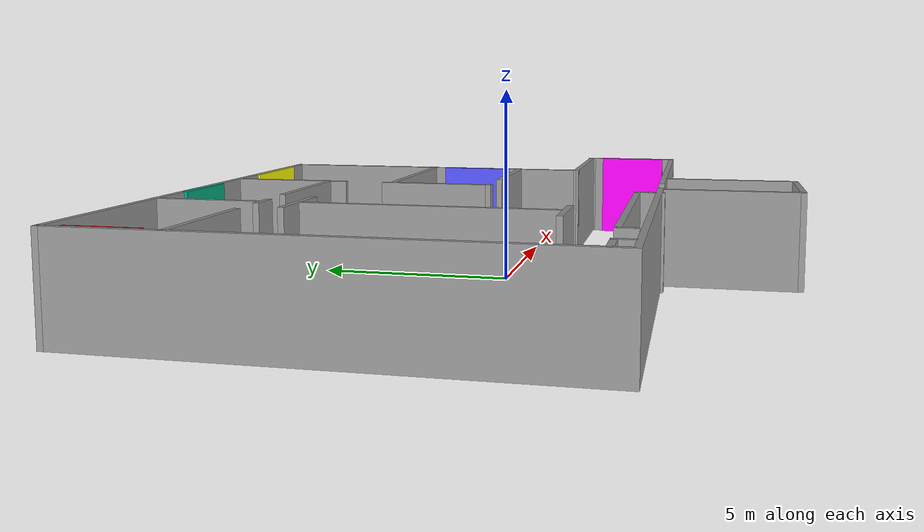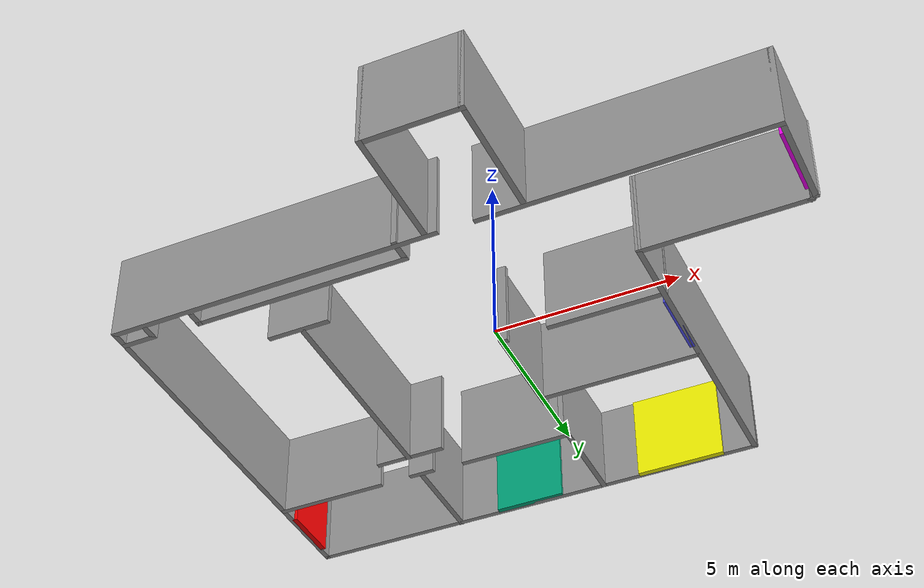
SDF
<?xml version='1.0'?>
<sdf version='1.6'>
  <model name='map3'>
    <pose frame=''>0.023614 0.049159 0 0 -0 0</pose>
    <link name='Wall_10'>
      <collision name='Wall_10_Collision'>
        <geometry>
          <box>
            <size>2.75 0.15 2.5</size>
          </box>
        </geometry>
        <pose frame=''>0 0 1.25 0 -0 0</pose>
      </collision>
      <visual name='Wall_10_Visual'>
        <pose frame=''>0 0 1.25 0 -0 0</pose>
        <geometry>
          <box>
            <size>2.75 0.15 2.5</size>
          </box>
        </geometry>
        <material>
          <script>
            <uri>file://media/materials/scripts/gazebo.material</uri>
            <name>Gazebo/Grey</name>
          </script>
          <ambient>1 1 1 1</ambient>
        </material>
        <meta>
          <layer>0</layer>
        </meta>
      </visual>
      <pose frame=''>1.24335 -7.55642 0 0 -0 0</pose>
    </link>
    <link name='Wall_11'>
      <collision name='Wall_11_Collision'>
        <geometry>
          <box>
            <size>3.5 0.15 2.5</size>
          </box>
        </geometry>
        <pose frame=''>0 0 1.25 0 -0 0</pose>
      </collision>
      <visual name='Wall_11_Visual'>
        <pose frame=''>0 0 1.25 0 -0 0</pose>
        <geometry>
          <box>
            <size>3.5 0.15 2.5</size>
          </box>
        </geometry>
        <material>
          <script>
            <uri>file://media/materials/scripts/gazebo.material</uri>
            <name>Gazebo/Grey</name>
          </script>
          <ambient>1 1 1 1</ambient>
        </material>
        <meta>
          <layer>0</layer>
        </meta>
      </visual>
      <pose frame=''>2.54335 -5.88142 0 0 -0 1.5708</pose>
    </link>
    <link name='Wall_13'>
      <collision name='Wall_13_Collision'>
        <geometry>
          <box>
            <size>7.75 0.15 2.5</size>
          </box>
        </geometry>
        <pose frame=''>0 0 1.25 0 -0 0</pose>
      </collision>
      <visual name='Wall_13_Visual'>
        <pose frame=''>0 0 1.25 0 -0 0</pose>
        <geometry>
          <box>
            <size>7.75 0.15 2.5</size>
          </box>
        </geometry>
        <material>
          <script>
            <uri>file://media/materials/scripts/gazebo.material</uri>
            <name>Gazebo/Grey</name>
          </script>
          <ambient>1 1 1 1</ambient>
        </material>
        <meta>
          <layer>0</layer>
        </meta>
      </visual>
      <pose frame=''>5.08014 -4.03855 0 0 -0 0</pose>
    </link>
    <link name='Wall_19'>
      <collision name='Wall_19_Collision'>
        <geometry>
          <box>
            <size>2.75 0.15 2.5</size>
          </box>
        </geometry>
        <pose frame=''>0 0 1.25 0 -0 0</pose>
      </collision>
      <visual name='Wall_19_Visual'>
        <pose frame=''>0 0 1.25 0 -0 0</pose>
        <geometry>
          <box>
            <size>2.75 0.15 2.5</size>
          </box>
        </geometry>
        <material>
          <script>
            <uri>file://media/materials/scripts/gazebo.material</uri>
            <name>Gazebo/Grey</name>
          </script>
          <ambient>1 1 1 1</ambient>
        </material>
        <meta>
          <layer>0</layer>
        </meta>
      </visual>
      <pose frame=''>8.88014 -2.73855 0 0 -0 1.5708</pose>
    </link>
    <link name='Wall_2'>
      <collision name='Wall_2_Collision'>
        <geometry>
          <box>
            <size>11.75 0.15 2.5</size>
          </box>
        </geometry>
        <pose frame=''>0 0 1.25 0 -0 0</pose>
      </collision>
      <visual name='Wall_2_Visual'>
        <pose frame=''>0 0 1.25 0 -0 0</pose>
        <geometry>
          <box>
            <size>11.75 0.15 2.5</size>
          </box>
        </geometry>
        <material>
          <script>
            <uri>file://media/materials/scripts/gazebo.material</uri>
            <name>Gazebo/Grey</name>
          </script>
          <ambient>1 1 1 1</ambient>
        </material>
        <meta>
          <layer>0</layer>
        </meta>
      </visual>
      <pose frame=''>-8.9089 1.7427 0 0 0 -1.5708</pose>
    </link>
    <link name='Wall_23'>
      <collision name='Wall_23_Collision'>
        <geometry>
          <box>
            <size>4.5 0.15 2.5</size>
          </box>
        </geometry>
        <pose frame=''>0 0 1.25 0 -0 0</pose>
      </collision>
      <visual name='Wall_23_Visual'>
        <pose frame=''>0 0 1.25 0 -0 0</pose>
        <geometry>
          <box>
            <size>4.5 0.15 2.5</size>
          </box>
        </geometry>
        <material>
          <script>
            <uri>file://media/materials/scripts/gazebo.material</uri>
            <name>Gazebo/Grey</name>
          </script>
          <ambient>1 1 1 1</ambient>
        </material>
        <meta>
          <layer>0</layer>
        </meta>
      </visual>
      <pose frame=''>6.58081 -1.35775 0 0 -0 0</pose>
    </link>
    <link name='Wall_25'>
      <collision name='Wall_25_Collision'>
        <geometry>
          <box>
            <size>0.298284 0.15 2.5</size>
          </box>
        </geometry>
        <pose frame=''>0 0 1.25 0 -0 0</pose>
      </collision>
      <visual name='Wall_25_Visual'>
        <pose frame=''>0 0 1.25 0 -0 0</pose>
        <geometry>
          <box>
            <size>0.298284 0.15 2.5</size>
          </box>
        </geometry>
        <material>
          <script>
            <uri>file://media/materials/scripts/gazebo.material</uri>
            <name>Gazebo/Grey</name>
          </script>
          <ambient>1 1 1 1</ambient>
        </material>
        <meta>
          <layer>0</layer>
        </meta>
      </visual>
      <pose frame=''>8.81798 -1.39815 0 0 0 -0.576263</pose>
    </link>
    <link name='Wall_29'>
      <collision name='Wall_29_Collision'>
        <geometry>
          <box>
            <size>13.5 0.15 2.5</size>
          </box>
        </geometry>
        <pose frame=''>0 0 1.25 0 -0 0</pose>
      </collision>
      <visual name='Wall_29_Visual'>
        <pose frame=''>0 0 1.25 0 -0 0</pose>
        <geometry>
          <box>
            <size>13.5 0.15 2.5</size>
          </box>
        </geometry>
        <material>
          <script>
            <uri>file://media/materials/scripts/gazebo.material</uri>
            <name>Gazebo/Grey</name>
          </script>
          <ambient>1 1 1 1</ambient>
        </material>
        <meta>
          <layer>0</layer>
        </meta>
      </visual>
      <pose frame=''>-2.2339 7.5427 0 0 -0 0</pose>
    </link>
    <link name='Wall_3'>
      <collision name='Wall_3_Collision'>
        <geometry>
          <box>
            <size>9.25 0.15 2.5</size>
          </box>
        </geometry>
        <pose frame=''>0 0 1.25 0 -0 0</pose>
      </collision>
      <visual name='Wall_3_Visual'>
        <pose frame=''>0 0 1.25 0 -0 0</pose>
        <geometry>
          <box>
            <size>9.25 0.15 2.5</size>
          </box>
        </geometry>
        <material>
          <script>
            <uri>file://media/materials/scripts/gazebo.material</uri>
            <name>Gazebo/Grey</name>
          </script>
          <ambient>1 1 1 1</ambient>
        </material>
        <meta>
          <layer>0</layer>
        </meta>
      </visual>
      <pose frame=''>-4.3589 -4.05731 0 0 -0 0</pose>
    </link>
    <link name='Wall_30'>
      <collision name='Wall_30_Collision'>
        <geometry>
          <box>
            <size>9.05051 0.15 2.5</size>
          </box>
        </geometry>
        <pose frame=''>0 0 1.25 0 -0 0</pose>
      </collision>
      <visual name='Wall_30_Visual'>
        <pose frame=''>0 0 1.25 0 -0 0</pose>
        <geometry>
          <box>
            <size>9.05051 0.15 2.5</size>
          </box>
        </geometry>
        <material>
          <script>
            <uri>file://media/materials/scripts/gazebo.material</uri>
            <name>Gazebo/Grey</name>
          </script>
          <ambient>1 1 1 1</ambient>
        </material>
        <meta>
          <layer>0</layer>
        </meta>
      </visual>
      <pose frame=''>4.42345 3.09247 0 0 0 -1.57476</pose>
    </link>
    <link name='Wall_36'>
      <collision name='Wall_36_Collision'>
        <geometry>
          <box>
            <size>3.25 0.15 2.5</size>
          </box>
        </geometry>
        <pose frame=''>0 0 1.25 0 -0 0</pose>
      </collision>
      <visual name='Wall_36_Visual'>
        <pose frame=''>0 0 1.25 0 -0 0</pose>
        <geometry>
          <box>
            <size>3.25 0.15 2.5</size>
          </box>
        </geometry>
        <material>
          <script>
            <uri>file://media/materials/scripts/gazebo.material</uri>
            <name>Gazebo/Grey</name>
          </script>
          <ambient>1 1 1 1</ambient>
        </material>
        <meta>
          <layer>0</layer>
        </meta>
      </visual>
      <pose frame=''>-7.35704 4.85014 0 0 -0 3.14159</pose>
    </link>
    <link name='Wall_38'>
      <collision name='Wall_38_Collision'>
        <geometry>
          <box>
            <size>2.75 0.15 2.5</size>
          </box>
        </geometry>
        <pose frame=''>0 0 1.25 0 -0 0</pose>
      </collision>
      <visual name='Wall_38_Visual'>
        <pose frame=''>0 0 1.25 0 -0 0</pose>
        <geometry>
          <box>
            <size>2.75 0.15 2.5</size>
          </box>
        </geometry>
        <material>
          <script>
            <uri>file://media/materials/scripts/gazebo.material</uri>
            <name>Gazebo/Grey</name>
          </script>
          <ambient>1 1 1 1</ambient>
        </material>
        <meta>
          <layer>0</layer>
        </meta>
      </visual>
      <pose frame=''>-4.4886 6.25642 0 0 0 -1.5708</pose>
    </link>
    <link name='Wall_43'>
      <collision name='Wall_43_Collision'>
        <geometry>
          <box>
            <size>0.75 0.15 2.5</size>
          </box>
        </geometry>
        <pose frame=''>0 0 1.25 0 -0 0</pose>
      </collision>
      <visual name='Wall_43_Visual'>
        <pose frame=''>0 0 1.25 0 -0 0</pose>
        <geometry>
          <box>
            <size>0.75 0.15 2.5</size>
          </box>
        </geometry>
        <material>
          <script>
            <uri>file://media/materials/scripts/gazebo.material</uri>
            <name>Gazebo/Grey</name>
          </script>
          <ambient>1 1 1 1</ambient>
        </material>
        <meta>
          <layer>0</layer>
        </meta>
      </visual>
      <pose frame=''>-4.46616 4.82701 0 0 -0 0</pose>
    </link>
    <link name='Wall_45'>
      <collision name='Wall_45_Collision'>
        <geometry>
          <box>
            <size>2 0.15 2.5</size>
          </box>
        </geometry>
        <pose frame=''>0 0 1.25 0 -0 0</pose>
      </collision>
      <visual name='Wall_45_Visual'>
        <pose frame=''>0 0 1.25 0 -0 0</pose>
        <geometry>
          <box>
            <size>2 0.15 2.5</size>
          </box>
        </geometry>
        <material>
          <script>
            <uri>file://media/materials/scripts/gazebo.material</uri>
            <name>Gazebo/Grey</name>
          </script>
          <ambient>1 1 1 1</ambient>
        </material>
        <meta>
          <layer>0</layer>
        </meta>
      </visual>
      <pose frame=''>-4.41943 3.97118 0 0 -0 0</pose>
    </link>
    <link name='Wall_47'>
      <collision name='Wall_47_Collision'>
        <geometry>
          <box>
            <size>6.25 0.15 2.5</size>
          </box>
        </geometry>
        <pose frame=''>0 0 1.25 0 -0 0</pose>
      </collision>
      <visual name='Wall_47_Visual'>
        <pose frame=''>0 0 1.25 0 -0 0</pose>
        <geometry>
          <box>
            <size>6.25 0.15 2.5</size>
          </box>
        </geometry>
        <material>
          <script>
            <uri>file://media/materials/scripts/gazebo.material</uri>
            <name>Gazebo/Grey</name>
          </script>
          <ambient>1 1 1 1</ambient>
        </material>
        <meta>
          <layer>0</layer>
        </meta>
      </visual>
      <pose frame=''>-4.46547 0.921178 0 0 0 -1.5708</pose>
    </link>
    <link name='Wall_49'>
      <collision name='Wall_49_Collision'>
        <geometry>
          <box>
            <size>1.75 0.15 2.5</size>
          </box>
        </geometry>
        <pose frame=''>0 0 1.25 0 -0 0</pose>
      </collision>
      <visual name='Wall_49_Visual'>
        <pose frame=''>0 0 1.25 0 -0 0</pose>
        <geometry>
          <box>
            <size>1.75 0.15 2.5</size>
          </box>
        </geometry>
        <material>
          <script>
            <uri>file://media/materials/scripts/gazebo.material</uri>
            <name>Gazebo/Grey</name>
          </script>
          <ambient>1 1 1 1</ambient>
        </material>
        <meta>
          <layer>0</layer>
        </meta>
      </visual>
      <pose frame=''>-4.54964 -2.22622 0 0 -0 0</pose>
    </link>
    <link name='Wall_51'>
      <collision name='Wall_51_Collision'>
        <geometry>
          <box>
            <size>3.25 0.15 2.5</size>
          </box>
        </geometry>
        <pose frame=''>0 0 1.25 0 -0 0</pose>
      </collision>
      <visual name='Wall_51_Visual'>
        <pose frame=''>0 0 1.25 0 -0 0</pose>
        <geometry>
          <box>
            <size>3.25 0.15 2.5</size>
          </box>
        </geometry>
        <material>
          <script>
            <uri>file://media/materials/scripts/gazebo.material</uri>
            <name>Gazebo/Grey</name>
          </script>
          <ambient>1 1 1 1</ambient>
        </material>
        <meta>
          <layer>0</layer>
        </meta>
      </visual>
      <pose frame=''>-0.029134 5.99052 0 0 0 -1.5708</pose>
    </link>
    <link name='Wall_53'>
      <collision name='Wall_53_Collision'>
        <geometry>
          <box>
            <size>3.25 0.15 2.5</size>
          </box>
        </geometry>
        <pose frame=''>0 0 1.25 0 -0 0</pose>
      </collision>
      <visual name='Wall_53_Visual'>
        <pose frame=''>0 0 1.25 0 -0 0</pose>
        <geometry>
          <box>
            <size>3.25 0.15 2.5</size>
          </box>
        </geometry>
        <material>
          <script>
            <uri>file://media/materials/scripts/gazebo.material</uri>
            <name>Gazebo/Grey</name>
          </script>
          <ambient>1 1 1 1</ambient>
        </material>
        <meta>
          <layer>0</layer>
        </meta>
      </visual>
      <pose frame=''>-1.59563 4.87597 0 0 -0 0</pose>
    </link>
    <link name='Wall_56'>
      <collision name='Wall_56_Collision'>
        <geometry>
          <box>
            <size>4.5 0.15 2.5</size>
          </box>
        </geometry>
        <pose frame=''>0 0 1.25 0 -0 0</pose>
      </collision>
      <visual name='Wall_56_Visual'>
        <pose frame=''>0 0 1.25 0 -0 0</pose>
        <geometry>
          <box>
            <size>4.5 0.15 2.5</size>
          </box>
        </geometry>
        <material>
          <script>
            <uri>file://media/materials/scripts/gazebo.material</uri>
            <name>Gazebo/Grey</name>
          </script>
          <ambient>1 1 1 1</ambient>
        </material>
        <meta>
          <layer>0</layer>
        </meta>
      </visual>
      <pose frame=''>2.1542 3.06366 0 0 -0 0</pose>
    </link>
    <link name='Wall_58'>
      <collision name='Wall_58_Collision'>
        <geometry>
          <box>
            <size>3 0.15 2.5</size>
          </box>
        </geometry>
        <pose frame=''>0 0 1.25 0 -0 0</pose>
      </collision>
      <visual name='Wall_58_Visual'>
        <pose frame=''>0 0 1.25 0 -0 0</pose>
        <geometry>
          <box>
            <size>3 0.15 2.5</size>
          </box>
        </geometry>
        <material>
          <script>
            <uri>file://media/materials/scripts/gazebo.material</uri>
            <name>Gazebo/Grey</name>
          </script>
          <ambient>1 1 1 1</ambient>
        </material>
        <meta>
          <layer>0</layer>
        </meta>
      </visual>
      <pose frame=''>-0.036008 1.84234 0 0 -0 1.5708</pose>
    </link>
    <link name='Wall_60'>
      <collision name='Wall_60_Collision'>
        <geometry>
          <box>
            <size>0.25 0.15 2.5</size>
          </box>
        </geometry>
        <pose frame=''>0 0 1.25 0 -0 0</pose>
      </collision>
      <visual name='Wall_60_Visual'>
        <pose frame=''>0 0 1.25 0 -0 0</pose>
        <geometry>
          <box>
            <size>0.25 0.15 2.5</size>
          </box>
        </geometry>
        <material>
          <script>
            <uri>file://media/materials/scripts/gazebo.material</uri>
            <name>Gazebo/Grey</name>
          </script>
          <ambient>1 1 1 1</ambient>
        </material>
        <meta>
          <layer>0</layer>
        </meta>
      </visual>
      <pose frame=''>0.013992 0.417338 0 0 -0 0</pose>
    </link>
    <link name='Wall_62'>
      <collision name='Wall_62_Collision'>
        <geometry>
          <box>
            <size>3.25 0.15 2.5</size>
          </box>
        </geometry>
        <pose frame=''>0 0 1.25 0 -0 0</pose>
      </collision>
      <visual name='Wall_62_Visual'>
        <pose frame=''>0 0 1.25 0 -0 0</pose>
        <geometry>
          <box>
            <size>3.25 0.15 2.5</size>
          </box>
        </geometry>
        <material>
          <script>
            <uri>file://media/materials/scripts/gazebo.material</uri>
            <name>Gazebo/Grey</name>
          </script>
          <ambient>1 1 1 1</ambient>
        </material>
        <meta>
          <layer>0</layer>
        </meta>
      </visual>
      <pose frame=''>2.86757 0.38692 0 0 -0 0</pose>
    </link>
    <link name='Wall_64'>
      <collision name='Wall_64_Collision'>
        <geometry>
          <box>
            <size>1 0.15 2.5</size>
          </box>
        </geometry>
        <pose frame=''>0 0 1.25 0 -0 0</pose>
      </collision>
      <visual name='Wall_64_Visual'>
        <pose frame=''>0 0 1.25 0 -0 0</pose>
        <geometry>
          <box>
            <size>1 0.15 2.5</size>
          </box>
        </geometry>
        <material>
          <script>
            <uri>file://media/materials/scripts/gazebo.material</uri>
            <name>Gazebo/Grey</name>
          </script>
          <ambient>1 1 1 1</ambient>
        </material>
        <meta>
          <layer>0</layer>
        </meta>
      </visual>
      <pose frame=''>-8.48374 -3.57796 0 0 -0 0</pose>
    </link>
    <link name='Wall_65'>
      <collision name='Wall_65_Collision'>
        <geometry>
          <box>
            <size>0.5 0.15 2.5</size>
          </box>
        </geometry>
        <pose frame=''>0 0 1.25 0 -0 0</pose>
      </collision>
      <visual name='Wall_65_Visual'>
        <pose frame=''>0 0 1.25 0 -0 0</pose>
        <geometry>
          <box>
            <size>0.5 0.15 2.5</size>
          </box>
        </geometry>
        <material>
          <script>
            <uri>file://media/materials/scripts/gazebo.material</uri>
            <name>Gazebo/Grey</name>
          </script>
          <ambient>1 1 1 1</ambient>
        </material>
        <meta>
          <layer>0</layer>
        </meta>
      </visual>
      <pose frame=''>-8.05874 -3.75296 0 0 0 -1.5708</pose>
    </link>
    <link name='Wall_69'>
      <collision name='Wall_69_Collision'>
        <geometry>
          <box>
            <size>0.5 0.15 2.5</size>
          </box>
        </geometry>
        <pose frame=''>0 0 1.25 0 -0 0</pose>
      </collision>
      <visual name='Wall_69_Visual'>
        <pose frame=''>0 0 1.25 0 -0 0</pose>
        <geometry>
          <box>
            <size>0.5 0.15 2.5</size>
          </box>
        </geometry>
        <material>
          <script>
            <uri>file://media/materials/scripts/gazebo.material</uri>
            <name>Gazebo/Grey</name>
          </script>
          <ambient>1 1 1 1</ambient>
        </material>
        <meta>
          <layer>0</layer>
        </meta>
      </visual>
      <pose frame=''>-6.71133 -3.7067 0 0 0 -1.5708</pose>
    </link>
    <link name='Wall_71'>
      <collision name='Wall_71_Collision'>
        <geometry>
          <box>
            <size>6 0.15 2.5</size>
          </box>
        </geometry>
        <pose frame=''>0 0 1.25 0 -0 0</pose>
      </collision>
      <visual name='Wall_71_Visual'>
        <pose frame=''>0 0 1.25 0 -0 0</pose>
        <geometry>
          <box>
            <size>6 0.15 2.5</size>
          </box>
        </geometry>
        <material>
          <script>
            <uri>file://media/materials/scripts/gazebo.material</uri>
            <name>Gazebo/Grey</name>
          </script>
          <ambient>1 1 1 1</ambient>
        </material>
        <meta>
          <layer>0</layer>
        </meta>
      </visual>
      <pose frame=''>-3.78633 -3.5317 0 0 -0 0</pose>
    </link>
    <link name='Wall_74'>
      <collision name='Wall_74_Collision'>
        <geometry>
          <box>
            <size>1.75 0.15 2.5</size>
          </box>
        </geometry>
        <pose frame=''>0 0 1.25 0 -0 0</pose>
      </collision>
      <visual name='Wall_74_Visual'>
        <pose frame=''>0 0 1.25 0 -0 0</pose>
        <geometry>
          <box>
            <size>1.75 0.15 2.5</size>
          </box>
        </geometry>
        <material>
          <script>
            <uri>file://media/materials/scripts/gazebo.material</uri>
            <name>Gazebo/Grey</name>
          </script>
          <ambient>1 0 0 1</ambient>
        </material>
        <meta>
          <layer>0</layer>
        </meta>
      </visual>
      <pose frame=''>-8.81663 6.21254 0 0 0 -1.5708</pose>
    </link>
    <link name='Wall_77'>
      <collision name='Wall_77_Collision'>
        <geometry>
          <box>
            <size>2 0.15 2.5</size>
          </box>
        </geometry>
        <pose frame=''>0 0 1.25 0 -0 0</pose>
      </collision>
      <visual name='Wall_77_Visual'>
        <pose frame=''>0 0 1.25 0 -0 0</pose>
        <geometry>
          <box>
            <size>2 0.15 2.5</size>
          </box>
        </geometry>
        <material>
          <script>
            <uri>file://media/materials/scripts/gazebo.material</uri>
            <name>Gazebo/Grey</name>
          </script>
          <ambient>0 0.666667 0.498039 1</ambient>
        </material>
        <meta>
          <layer>0</layer>
        </meta>
      </visual>
      <pose frame=''>-2.2628 7.4541 0 0 -0 0</pose>
    </link>
    <link name='Wall_79'>
      <collision name='Wall_79_Collision'>
        <geometry>
          <box>
            <size>2.5 0.15 2.5</size>
          </box>
        </geometry>
        <pose frame=''>0 0 1.25 0 -0 0</pose>
      </collision>
      <visual name='Wall_79_Visual'>
        <pose frame=''>0 0 1.25 0 -0 0</pose>
        <geometry>
          <box>
            <size>2.5 0.15 2.5</size>
          </box>
        </geometry>
        <material>
          <script>
            <uri>file://media/materials/scripts/gazebo.material</uri>
            <name>Gazebo/Grey</name>
          </script>
          <ambient>1 1 0 1</ambient>
        </material>
        <meta>
          <layer>0</layer>
        </meta>
      </visual>
      <pose frame=''>2.31177 7.48055 0 0 -0 0</pose>
    </link>
    <link name='Wall_8'>
      <collision name='Wall_8_Collision'>
        <geometry>
          <box>
            <size>3.5 0.15 2.5</size>
          </box>
        </geometry>
        <pose frame=''>0 0 1.25 0 -0 0</pose>
      </collision>
      <visual name='Wall_8_Visual'>
        <pose frame=''>0 0 1.25 0 -0 0</pose>
        <geometry>
          <box>
            <size>3.5 0.15 2.5</size>
          </box>
        </geometry>
        <material>
          <script>
            <uri>file://media/materials/scripts/gazebo.material</uri>
            <name>Gazebo/Grey</name>
          </script>
          <ambient>1 1 1 1</ambient>
        </material>
        <meta>
          <layer>0</layer>
        </meta>
      </visual>
      <pose frame=''>-0.056649 -5.88142 0 0 -0 1.5708</pose>
    </link>
    <link name='Wall_81'>
      <collision name='Wall_81_Collision'>
        <geometry>
          <box>
            <size>2 0.15 2.5</size>
          </box>
        </geometry>
        <pose frame=''>0 0 1.25 0 -0 0</pose>
      </collision>
      <visual name='Wall_81_Visual'>
        <pose frame=''>0 0 1.25 0 -0 0</pose>
        <geometry>
          <box>
            <size>2 0.15 2.5</size>
          </box>
        </geometry>
        <material>
          <script>
            <uri>file://media/materials/scripts/gazebo.material</uri>
            <name>Gazebo/Grey</name>
          </script>
          <ambient>0.333333 0.333333 1 1</ambient>
        </material>
        <meta>
          <layer>0</layer>
        </meta>
      </visual>
      <pose frame=''>4.35045 1.68875 0 0 0 -1.5708</pose>
    </link>
    <link name='Wall_83'>
      <collision name='Wall_83_Collision'>
        <geometry>
          <box>
            <size>2 0.15 2.5</size>
          </box>
        </geometry>
        <pose frame=''>0 0 1.25 0 -0 0</pose>
      </collision>
      <visual name='Wall_83_Visual'>
        <pose frame=''>0 0 1.25 0 -0 0</pose>
        <geometry>
          <box>
            <size>2 0.15 2.5</size>
          </box>
        </geometry>
        <material>
          <script>
            <uri>file://media/materials/scripts/gazebo.material</uri>
            <name>Gazebo/Grey</name>
          </script>
          <ambient>1 0 1 1</ambient>
        </material>
        <meta>
          <layer>0</layer>
        </meta>
      </visual>
      <pose frame=''>8.78914 -2.74547 0 0 0 -1.5708</pose>
    </link>
    <link name='Wall_85'>
      <collision name='Wall_85_Collision'>
        <geometry>
          <box>
            <size>0.75 0.15 2.5</size>
          </box>
        </geometry>
        <pose frame=''>0 0 1.25 0 -0 0</pose>
      </collision>
      <visual name='Wall_85_Visual'>
        <pose frame=''>0 0 1.25 0 -0 0</pose>
        <geometry>
          <box>
            <size>0.75 0.15 2.5</size>
          </box>
        </geometry>
        <material>
          <script>
            <uri>file://media/materials/scripts/gazebo.material</uri>
            <name>Gazebo/Grey</name>
          </script>
          <ambient>1 1 1 1</ambient>
        </material>
        <meta>
          <layer>0</layer>
        </meta>
      </visual>
      <pose frame=''>-0.861328 -3.8317 0 0 0 -1.5708</pose>
    </link>
    <static>1</static>
  </model>
</sdf>
